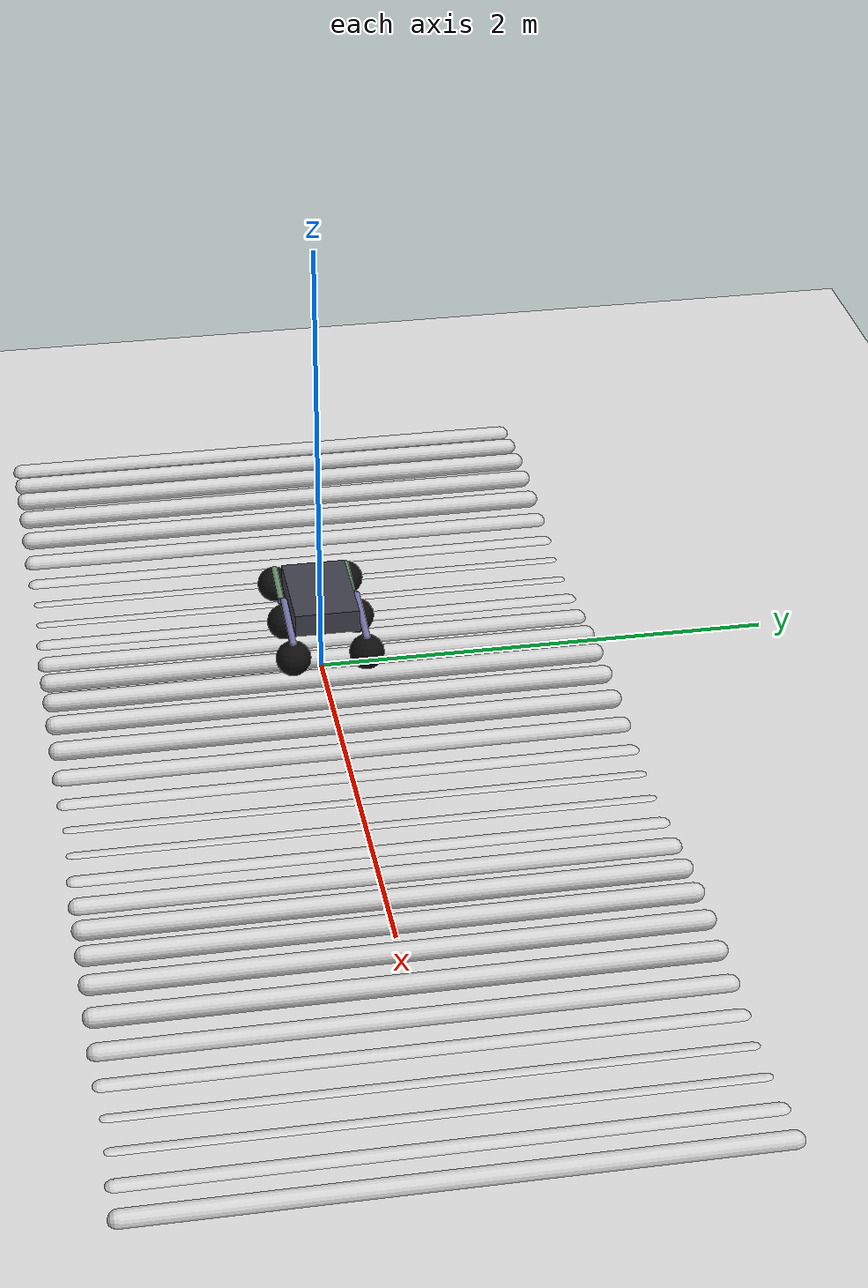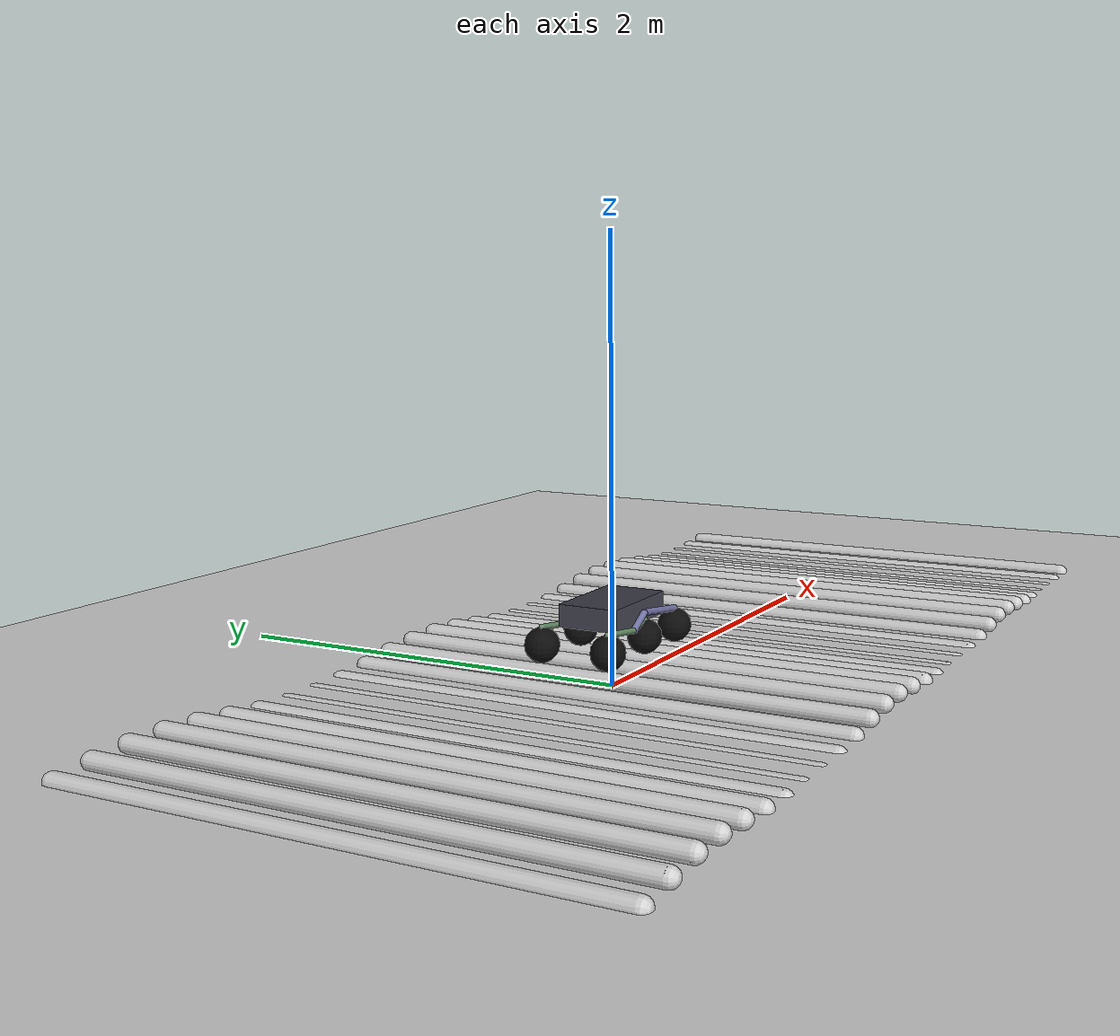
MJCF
<mujoco model="scene_sine">
  <compiler angle="degree" inertiafromgeom="true"/>
  <option timestep="0.002" gravity="0 0 -9.81"/>

  <include file="rover.xml"/>

  <worldbody>
    <geom name="floor" type="plane" size="25 25 0.1" pos="0 0 0"
          contype="1" conaffinity="1"
          friction="1.2 0.01 0.0001"
          rgba="0.88 0.88 0.88 1"/>

    <body name="sine_road" pos="0 0 0">
      <geom type="capsule" fromto="-2.00 -1.2  0.000  -2.00  1.2  0.000" size="0.04" rgba="0.82 0.82 0.82 1"
            contype="1" conaffinity="1" friction="0.8 0.005 0.0001"/>
      <geom type="capsule" fromto="-1.82 -1.2  0.024  -1.82  1.2  0.024" size="0.04" rgba="0.82 0.82 0.82 1"
            contype="1" conaffinity="1" friction="0.8 0.005 0.0001"/>
      <geom type="capsule" fromto="-1.64 -1.2  0.038  -1.64  1.2  0.038" size="0.04" rgba="0.82 0.82 0.82 1"
            contype="1" conaffinity="1" friction="0.8 0.005 0.0001"/>
      <geom type="capsule" fromto="-1.46 -1.2  0.038  -1.46  1.2  0.038" size="0.04" rgba="0.82 0.82 0.82 1"
            contype="1" conaffinity="1" friction="0.8 0.005 0.0001"/>
      <geom type="capsule" fromto="-1.28 -1.2  0.024  -1.28  1.2  0.024" size="0.04" rgba="0.82 0.82 0.82 1"
            contype="1" conaffinity="1" friction="0.8 0.005 0.0001"/>
      <geom type="capsule" fromto="-1.10 -1.2  0.000  -1.10  1.2  0.000" size="0.04" rgba="0.82 0.82 0.82 1"
            contype="1" conaffinity="1" friction="0.8 0.005 0.0001"/>
      <geom type="capsule" fromto="-0.92 -1.2 -0.024  -0.92  1.2 -0.024" size="0.04" rgba="0.82 0.82 0.82 1"
            contype="1" conaffinity="1" friction="0.8 0.005 0.0001"/>
      <geom type="capsule" fromto="-0.74 -1.2 -0.038  -0.74  1.2 -0.038" size="0.04" rgba="0.82 0.82 0.82 1"
            contype="1" conaffinity="1" friction="0.8 0.005 0.0001"/>
      <geom type="capsule" fromto="-0.56 -1.2 -0.038  -0.56  1.2 -0.038" size="0.04" rgba="0.82 0.82 0.82 1"
            contype="1" conaffinity="1" friction="0.8 0.005 0.0001"/>
      <geom type="capsule" fromto="-0.38 -1.2 -0.024  -0.38  1.2 -0.024" size="0.04" rgba="0.82 0.82 0.82 1"
            contype="1" conaffinity="1" friction="0.8 0.005 0.0001"/>

      <geom type="capsule" fromto="-0.20 -1.2  0.000  -0.20  1.2  0.000" size="0.04" rgba="0.82 0.82 0.82 1"
            contype="1" conaffinity="1" friction="0.8 0.005 0.0001"/>
      <geom type="capsule" fromto="-0.02 -1.2  0.024  -0.02  1.2  0.024" size="0.04" rgba="0.82 0.82 0.82 1"
            contype="1" conaffinity="1" friction="0.8 0.005 0.0001"/>
      <geom type="capsule" fromto=" 0.16 -1.2  0.038   0.16  1.2  0.038" size="0.04" rgba="0.82 0.82 0.82 1"
            contype="1" conaffinity="1" friction="0.8 0.005 0.0001"/>
      <geom type="capsule" fromto=" 0.34 -1.2  0.038   0.34  1.2  0.038" size="0.04" rgba="0.82 0.82 0.82 1"
            contype="1" conaffinity="1" friction="0.8 0.005 0.0001"/>
      <geom type="capsule" fromto=" 0.52 -1.2  0.024   0.52  1.2  0.024" size="0.04" rgba="0.82 0.82 0.82 1"
            contype="1" conaffinity="1" friction="0.8 0.005 0.0001"/>
      <geom type="capsule" fromto=" 0.70 -1.2  0.000   0.70  1.2  0.000" size="0.04" rgba="0.82 0.82 0.82 1"
            contype="1" conaffinity="1" friction="0.8 0.005 0.0001"/>
      <geom type="capsule" fromto=" 0.88 -1.2 -0.024   0.88  1.2 -0.024" size="0.04" rgba="0.82 0.82 0.82 1"
            contype="1" conaffinity="1" friction="0.8 0.005 0.0001"/>
      <geom type="capsule" fromto=" 1.06 -1.2 -0.038   1.06  1.2 -0.038" size="0.04" rgba="0.82 0.82 0.82 1"
            contype="1" conaffinity="1" friction="0.8 0.005 0.0001"/>
      <geom type="capsule" fromto=" 1.24 -1.2 -0.038   1.24  1.2 -0.038" size="0.04" rgba="0.82 0.82 0.82 1"
            contype="1" conaffinity="1" friction="0.8 0.005 0.0001"/>
      <geom type="capsule" fromto=" 1.42 -1.2 -0.024   1.42  1.2 -0.024" size="0.04" rgba="0.82 0.82 0.82 1"
            contype="1" conaffinity="1" friction="0.8 0.005 0.0001"/>

      <geom type="capsule" fromto=" 1.60 -1.2  0.000   1.60  1.2  0.000" size="0.04" rgba="0.82 0.82 0.82 1"
            contype="1" conaffinity="1" friction="0.8 0.005 0.0001"/>
      <geom type="capsule" fromto=" 1.78 -1.2  0.024   1.78  1.2  0.024" size="0.04" rgba="0.82 0.82 0.82 1"
            contype="1" conaffinity="1" friction="0.8 0.005 0.0001"/>
      <geom type="capsule" fromto=" 1.96 -1.2  0.038   1.96  1.2  0.038" size="0.04" rgba="0.82 0.82 0.82 1"
            contype="1" conaffinity="1" friction="0.8 0.005 0.0001"/>
      <geom type="capsule" fromto=" 2.14 -1.2  0.038   2.14  1.2  0.038" size="0.04" rgba="0.82 0.82 0.82 1"
            contype="1" conaffinity="1" friction="0.8 0.005 0.0001"/>
      <geom type="capsule" fromto=" 2.32 -1.2  0.024   2.32  1.2  0.024" size="0.04" rgba="0.82 0.82 0.82 1"
            contype="1" conaffinity="1" friction="0.8 0.005 0.0001"/>
      <geom type="capsule" fromto=" 2.50 -1.2  0.000   2.50  1.2  0.000" size="0.04" rgba="0.82 0.82 0.82 1"
            contype="1" conaffinity="1" friction="0.8 0.005 0.0001"/>
      <geom type="capsule" fromto=" 2.68 -1.2 -0.024   2.68  1.2 -0.024" size="0.04" rgba="0.82 0.82 0.82 1"
            contype="1" conaffinity="1" friction="0.8 0.005 0.0001"/>
      <geom type="capsule" fromto=" 2.86 -1.2 -0.038   2.86  1.2 -0.038" size="0.04" rgba="0.82 0.82 0.82 1"
            contype="1" conaffinity="1" friction="0.8 0.005 0.0001"/>
      <geom type="capsule" fromto=" 3.04 -1.2 -0.038   3.04  1.2 -0.038" size="0.04" rgba="0.82 0.82 0.82 1"
            contype="1" conaffinity="1" friction="0.8 0.005 0.0001"/>
      <geom type="capsule" fromto=" 3.22 -1.2 -0.024   3.22  1.2 -0.024" size="0.04" rgba="0.82 0.82 0.82 1"
            contype="1" conaffinity="1" friction="0.8 0.005 0.0001"/>
      <geom type="capsule" fromto=" 3.40 -1.2  0.000   3.40  1.2  0.000" size="0.04" rgba="0.82 0.82 0.82 1"
            contype="1" conaffinity="1" friction="0.8 0.005 0.0001"/>
    </body>

    <light pos="0 0 3" dir="0 0 -1" diffuse="1 1 1"/>
    <camera name="main" pos="2.2 -2.2 1.2" xyaxes="0.7 0.7 0  -0.2 0.2 0.96"/>
  </worldbody>
</mujoco>

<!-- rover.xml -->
<mujoco model="rocker_bogie">
  <compiler angle="degree" inertiafromgeom="true" autolimits="true"/>
  <option timestep="0.002" gravity="0 0 -9.81" solver="Newton" iterations="120"/>

  <default>
    <geom condim="4" friction="1.3 0.01 0.0001" solref="0.004 1" solimp="0.95 0.99 0.001"
          contype="0" conaffinity="0"/>
    <joint damping="2" armature="0.02" limited="false"/>
  </default>

  <asset>
    <material name="mat_chassis" rgba="0.25 0.25 0.30 1"/>
    <material name="mat_rocker"  rgba="0.45 0.45 0.65 1"/>
    <material name="mat_bogie"   rgba="0.40 0.55 0.40 1"/>
    <material name="mat_wheel"   rgba="0.05 0.05 0.05 1"/>
    <material name="mat_skid"    rgba="0.20 0.20 0.20 0.6"/>
  </asset>

  <worldbody>
    <body name="chassis" pos="0 0 0.35">
      <joint name="slide_x" type="slide" axis="1 0 0" damping="1.0"/>
      <joint name="slide_y" type="slide" axis="0 1 0" damping="1.0"/>
      <joint name="slide_z" type="slide" axis="0 0 1" damping="2.0"/>

      <joint name="roll"  type="hinge" axis="1 0 0" damping="4.0" limited="true" range="-20 20"/>
      <joint name="pitch" type="hinge" axis="0 1 0" damping="4.0" limited="true" range="-20 20"/>
      <joint name="yaw"   type="hinge" axis="0 0 1" damping="1.0"/>

      <inertial pos="0 0 -0.03" mass="8.0" diaginertia="0.25 0.55 0.55"/>

      <!-- кузов визуальный, НЕ контактит -->
      <geom type="box" size="0.22 0.14 0.05" material="mat_chassis"
            contype="0" conaffinity="0"/>

      <!-- ========== LEFT ========== -->
      <body name="rocker_L" pos="0 0.16 0">
        <joint name="rocker_L_j" type="hinge" axis="0 1 0" damping="8" limited="true" range="-35 35"/>

        <geom type="capsule" fromto="0 0 0   0.288 0 -0.04" size="0.015" density="500"
              material="mat_rocker" contype="0" conaffinity="0"/>
        <geom type="capsule" fromto="0 0 0   -0.096 0 -0.06" size="0.015" density="500"
              material="mat_rocker" contype="0" conaffinity="0"/>

        <body name="wheel_front_L" pos="0.288 0 -0.116">
          <joint name="wheel_front_L_j" type="hinge" axis="0 1 0" damping="0.4" armature="0.01"/>
          <geom type="sphere" size="0.076" material="mat_wheel"
                contype="1" conaffinity="1"/>
        </body>

        <body name="bogie_L" pos="-0.096 0 -0.06">
          <joint name="bogie_L_j" type="hinge" axis="0 1 0" damping="10" limited="true" range="-70 70"/>

          <geom type="capsule" fromto="0 0 0   0.096 0 0.03" size="0.013" density="550"
                material="mat_bogie" contype="0" conaffinity="0"/>
          <geom type="capsule" fromto="0 0 0   -0.232 0 0.03" size="0.013" density="550"
                material="mat_bogie" contype="0" conaffinity="0"/>

          <body name="wheel_mid_L" pos="0.096 0 -0.046">
            <joint name="wheel_mid_L_j" type="hinge" axis="0 1 0" damping="0.4" armature="0.01"/>
            <geom type="sphere" size="0.076" material="mat_wheel"
                  contype="1" conaffinity="1"/>
          </body>

          <body name="wheel_rear_L" pos="-0.232 0 -0.046">
            <joint name="wheel_rear_L_j" type="hinge" axis="0 1 0" damping="0.4" armature="0.01"/>
            <geom type="sphere" size="0.076" material="mat_wheel"
                  contype="1" conaffinity="1"/>
          </body>
        </body>
      </body>

      <!-- ========== RIGHT ========== -->
      <body name="rocker_R" pos="0 -0.16 0">
        <joint name="rocker_R_j" type="hinge" axis="0 1 0" damping="8" limited="true" range="-35 35"/>

        <geom type="capsule" fromto="0 0 0   0.288 0 -0.04" size="0.015" density="500"
              material="mat_rocker" contype="0" conaffinity="0"/>
        <geom type="capsule" fromto="0 0 0   -0.096 0 -0.06" size="0.015" density="500"
              material="mat_rocker" contype="0" conaffinity="0"/>

        <body name="wheel_front_R" pos="0.288 0 -0.116">
          <joint name="wheel_front_R_j" type="hinge" axis="0 1 0" damping="0.4" armature="0.01"/>
          <geom type="sphere" size="0.076" material="mat_wheel"
                contype="1" conaffinity="1"/>
        </body>

        <body name="bogie_R" pos="-0.096 0 -0.06">
          <joint name="bogie_R_j" type="hinge" axis="0 1 0" damping="10" limited="true" range="-70 70"/>

          <geom type="capsule" fromto="0 0 0   0.096 0 0.03" size="0.013" density="550"
                material="mat_bogie" contype="0" conaffinity="0"/>
          <geom type="capsule" fromto="0 0 0   -0.232 0 0.03" size="0.013" density="550"
                material="mat_bogie" contype="0" conaffinity="0"/>

          <body name="wheel_mid_R" pos="0.096 0 -0.046">
            <joint name="wheel_mid_R_j" type="hinge" axis="0 1 0" damping="0.4" armature="0.01"/>
            <geom type="sphere" size="0.076" material="mat_wheel"
                  contype="1" conaffinity="1"/>
          </body>

          <body name="wheel_rear_R" pos="-0.232 0 -0.046">
            <joint name="wheel_rear_R_j" type="hinge" axis="0 1 0" damping="0.4" armature="0.01"/>
            <geom type="sphere" size="0.076" material="mat_wheel"
                  contype="1" conaffinity="1"/>
          </body>
        </body>
      </body>

    </body>
  </worldbody>

  <actuator>
    <position name="diff_pitch" joint="pitch" kp="900" kv="80" forcerange="-250 250"/>
    <position name="diff_roll"  joint="roll"  kp="900" kv="80" forcerange="-250 250"/>

    <motor joint="wheel_front_L_j" gear="40"/>
    <motor joint="wheel_mid_L_j"   gear="40"/>
    <motor joint="wheel_rear_L_j"  gear="40"/>
    <motor joint="wheel_front_R_j" gear="40"/>
    <motor joint="wheel_mid_R_j"   gear="40"/>
    <motor joint="wheel_rear_R_j"  gear="40"/>
  </actuator>
</mujoco>
